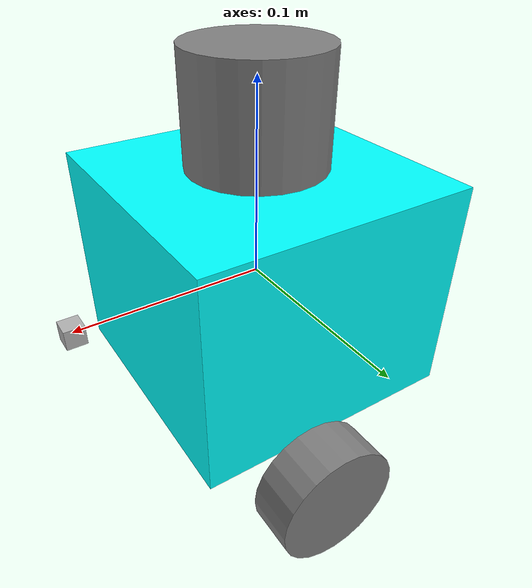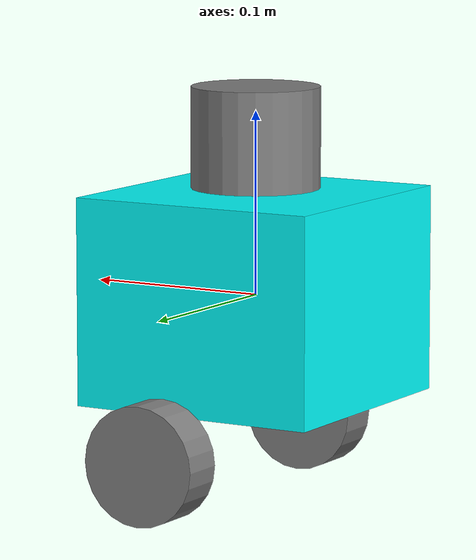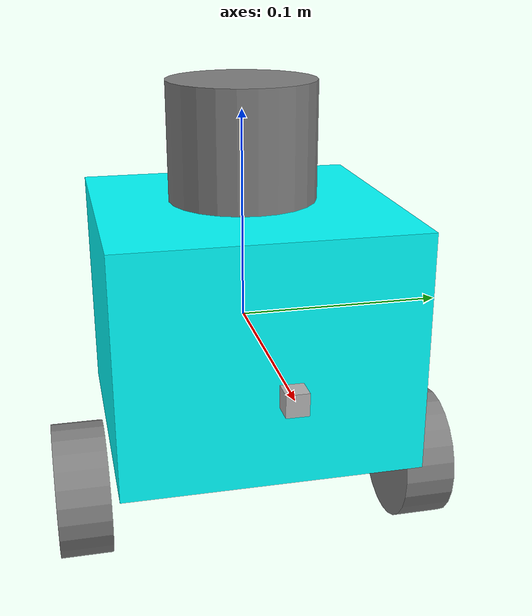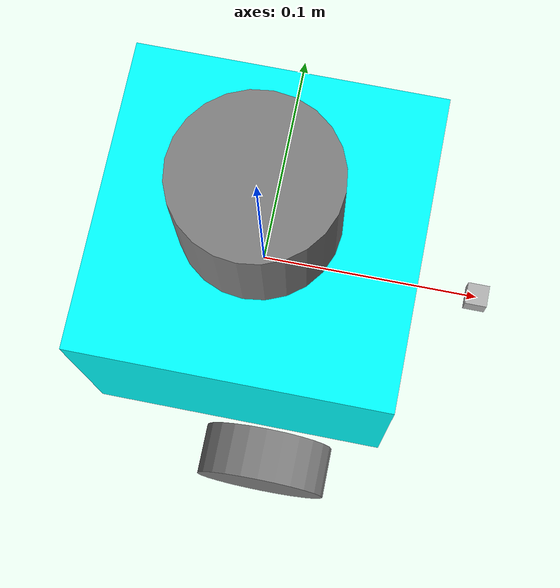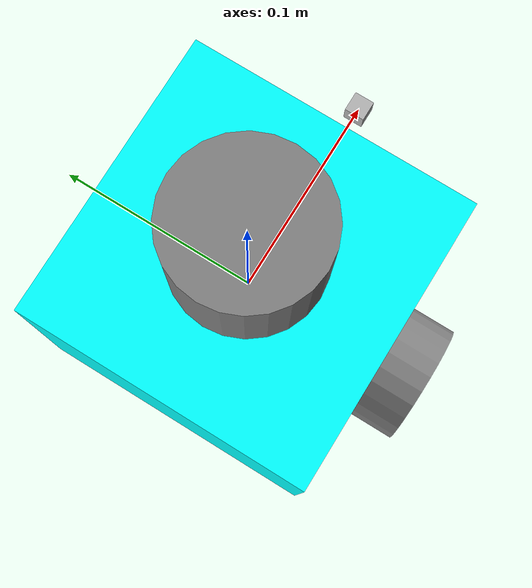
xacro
<?xml version="1.0"?>
<robot name="pibot" xmlns:xacro="http://ros.org/wiki/xacro">
<!-- Define robot constants -->
  <xacro:property name="base_width" value="0.1397"/>
  <xacro:property name="base_length" value="0.1397"/>
  <xacro:property name="base_height" value="0.1129"/>
  <xacro:property name="wheel_radius" value="0.032499"/>
  <xacro:property name="wheel_width" value="0.025"/>
  <xacro:property name="wheel_ygap" value="0.015"/>
  <xacro:property name="wheel_zoff" value="0.07915"/>
  <xacro:property name="wheel_xoff" value="-0.015"/>

   <!-- Robot Base -->
  <link name="base_link">
    <visual>
      <geometry>
        <box size="${base_length} ${base_width} ${base_height}"/>
      </geometry>
      <material name="Cyan">
        <color rgba="0.0 1.0 1.0 1.0"/>
      </material>
    </visual>
  </link>

  <!-- Robot Footprint -->
  <!-- z origin ${-(wheel_radius+wheel_zoff+base_height)} -->
  <link name="base_footprint"/>

  <joint name="base_joint" type="fixed">
    <parent link="base_link"/>
    <child link="base_footprint"/>
    <origin xyz="0.0 0.0 0.0" rpy="0 0 0"/>
  </joint>

    <!-- Wheels -->
  <xacro:macro name="wheel" params="prefix x_reflect y_reflect">
    <link name="${prefix}_link">
      <visual>
        <origin xyz="0 0 0" rpy="${pi/2} 0 0"/>
        <geometry>
            <cylinder radius="${wheel_radius}" length="${wheel_width}"/>
        </geometry>
        <material name="Gray">
          <color rgba="0.5 0.5 0.5 1.0"/>
        </material>
      </visual>
    </link>

    <joint name="${prefix}_joint" type="fixed">
      <parent link="base_link"/>
      <child link="${prefix}_link"/>
      <origin xyz="${-wheel_xoff} ${y_reflect*(base_width/2+wheel_ygap)} ${-wheel_zoff}" rpy="0 0 0"/>
      <axis xyz="0 1 0"/>
    </joint>
  </xacro:macro>

  <xacro:wheel prefix="drivewhl_l" x_reflect="-1" y_reflect="1" />
  <xacro:wheel prefix="drivewhl_r" x_reflect="-1" y_reflect="-1" />

    <!-- Caster Wheel -->

  <!-- Lidar Link -->
  <link name="lidar_link">
  <visual>
    <geometry>
    <cylinder radius="0.035" length="0.055" />
    </geometry>
    <material name="Gray">
          <color rgba="0.5 0.5 0.5 1.0"/>
        </material>
  </visual>
  </link>

  <joint name="lidar_joint" type="fixed">
    <parent link="base_link"/>
    <child link="lidar_link"/>
    <origin xyz="0.0 0 0.086" rpy="0 0 0"/>
  </joint>

  <!-- Lidar Link -->
  <link name="laser">
  </link>

  <joint name="laser_joint" type="fixed">
    <parent link="lidar_link"/>
    <child link="laser"/>
    <origin xyz="0 0 0" rpy="0 0 3.14159"/>
  </joint>

  <link name="imu_link">
  </link>
  <joint name="imu_joint" type="fixed">
    <parent link="base_link"/>
    <child link="imu_link"/>
    <origin xyz="-0.05 0 0"/>
  </joint>

  <joint name="camera_joint" type="fixed">
    <parent link="base_link"/>
    <child link="camera_link"/>
    <origin xyz="0.1 0 0" rpy="0 0 0"/>
  </joint>
  <link name="camera_link">
    <visual>
      <geometry>
        <box size="0.01 0.01 0.01"/>
      </geometry>
    </visual>
  </link>

  <joint name="camera_optical_joint" type="fixed">
    <parent link="camera_link"/>
    <child link="camera_link_optical"/>
    <origin xyz="0 0 0" rpy="${-pi/2} 0 ${-pi/2}"/>
  </joint>
  <link name="camera_link_optical">
  </link>

</robot>
